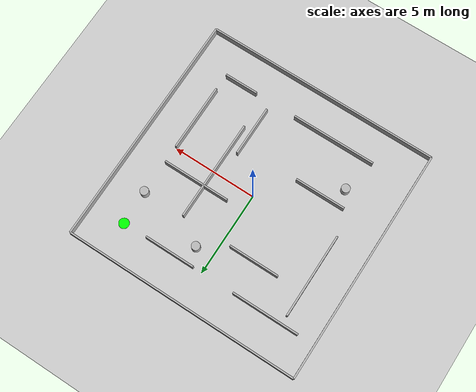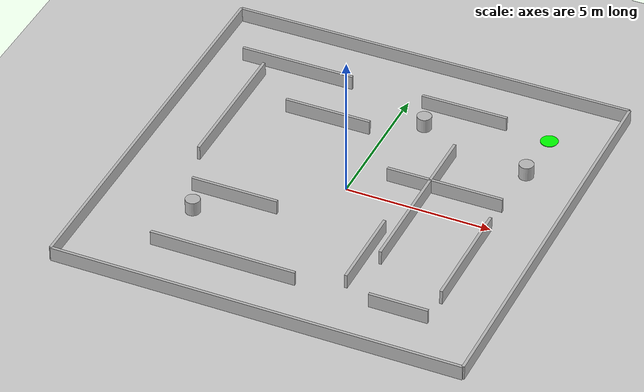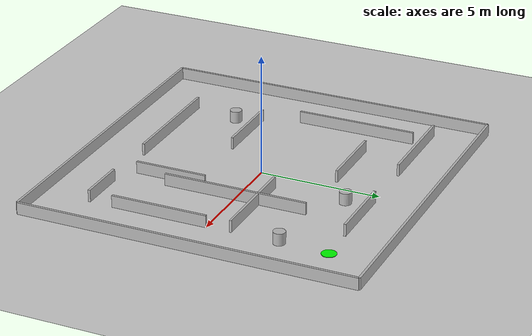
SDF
<?xml version="1.0" ?>
<sdf version="1.6">
  <world name="complex_maze">
    <include><uri>model://ground_plane</uri></include>
    <include><uri>model://sun</uri></include>

    <!-- Outer walls 14x14 -->
    <model name="wn"><static>true</static><pose>0 7 0.25 0 0 0</pose>
      <link name="l"><collision name="c"><geometry><box><size>14 0.1 0.5</size></box></geometry></collision>
      <visual name="v"><geometry><box><size>14 0.1 0.5</size></box></geometry></visual></link></model>
    <model name="ws"><static>true</static><pose>0 -7 0.25 0 0 0</pose>
      <link name="l"><collision name="c"><geometry><box><size>14 0.1 0.5</size></box></geometry></collision>
      <visual name="v"><geometry><box><size>14 0.1 0.5</size></box></geometry></visual></link></model>
    <model name="we"><static>true</static><pose>7 0 0.25 0 0 1.5708</pose>
      <link name="l"><collision name="c"><geometry><box><size>14 0.1 0.5</size></box></geometry></collision>
      <visual name="v"><geometry><box><size>14 0.1 0.5</size></box></geometry></visual></link></model>
    <model name="ww"><static>true</static><pose>-7 0 0.25 0 0 1.5708</pose>
      <link name="l"><collision name="c"><geometry><box><size>14 0.1 0.5</size></box></geometry></collision>
      <visual name="v"><geometry><box><size>14 0.1 0.5</size></box></geometry></visual></link></model>

    <!-- Dense internal maze walls -->
    <model name="m1"><static>true</static><pose>-4 5 0.25 0 0 0</pose>
      <link name="l"><collision name="c"><geometry><box><size>4 0.1 0.5</size></box></geometry></collision>
      <visual name="v"><geometry><box><size>4 0.1 0.5</size></box></geometry></visual></link></model>
    <model name="m2"><static>true</static><pose>2 5 0.25 0 0 0</pose>
      <link name="l"><collision name="c"><geometry><box><size>3 0.1 0.5</size></box></geometry></collision>
      <visual name="v"><geometry><box><size>3 0.1 0.5</size></box></geometry></visual></link></model>
    <model name="m3"><static>true</static><pose>-5 2 0.25 0 0 1.5708</pose>
      <link name="l"><collision name="c"><geometry><box><size>5 0.1 0.5</size></box></geometry></collision>
      <visual name="v"><geometry><box><size>5 0.1 0.5</size></box></geometry></visual></link></model>
    <model name="m4"><static>true</static><pose>-2 3 0.25 0 0 0</pose>
      <link name="l"><collision name="c"><geometry><box><size>3 0.1 0.5</size></box></geometry></collision>
      <visual name="v"><geometry><box><size>3 0.1 0.5</size></box></geometry></visual></link></model>
    <model name="m5"><static>true</static><pose>2.5 0 0.25 0 0 1.5708</pose>
      <link name="l"><collision name="c"><geometry><box><size>6 0.1 0.5</size></box></geometry></collision>
      <visual name="v"><geometry><box><size>6 0.1 0.5</size></box></geometry></visual></link></model>
    <model name="m6"><static>true</static><pose>3 1 0.25 0 0 0</pose>
      <link name="l"><collision name="c"><geometry><box><size>4 0.1 0.5</size></box></geometry></collision>
      <visual name="v"><geometry><box><size>4 0.1 0.5</size></box></geometry></visual></link></model>
    <model name="m7"><static>true</static><pose>5 -2 0.25 0 0 1.5708</pose>
      <link name="l"><collision name="c"><geometry><box><size>4 0.1 0.5</size></box></geometry></collision>
      <visual name="v"><geometry><box><size>4 0.1 0.5</size></box></geometry></visual></link></model>
    <model name="m8"><static>true</static><pose>-3 -2 0.25 0 0 0</pose>
      <link name="l"><collision name="c"><geometry><box><size>3 0.1 0.5</size></box></geometry></collision>
      <visual name="v"><geometry><box><size>3 0.1 0.5</size></box></geometry></visual></link></model>
    <model name="m9"><static>true</static><pose>2 -3 0.25 0 0 1.5708</pose>
      <link name="l"><collision name="c"><geometry><box><size>3 0.1 0.5</size></box></geometry></collision>
      <visual name="v"><geometry><box><size>3 0.1 0.5</size></box></geometry></visual></link></model>
    <model name="m10"><static>true</static><pose>-2 -5 0.25 0 0 0</pose>
      <link name="l"><collision name="c"><geometry><box><size>5 0.1 0.5</size></box></geometry></collision>
      <visual name="v"><geometry><box><size>5 0.1 0.5</size></box></geometry></visual></link></model>
    <model name="m11"><static>true</static><pose>4 -5 0.25 0 0 0</pose>
      <link name="l"><collision name="c"><geometry><box><size>2 0.1 0.5</size></box></geometry></collision>
      <visual name="v"><geometry><box><size>2 0.1 0.5</size></box></geometry></visual></link></model>

    <!-- Scattered pillars -->
    <model name="p1"><static>true</static><pose>-4 -3 0.25 0 0 0</pose>
      <link name="l"><collision name="c"><geometry><cylinder><radius>0.25</radius><length>0.5</length></cylinder></geometry></collision>
      <visual name="v"><geometry><cylinder><radius>0.25</radius><length>0.5</length></cylinder></geometry></visual></link></model>
    <model name="p2"><static>true</static><pose>1 4 0.25 0 0 0</pose>
      <link name="l"><collision name="c"><geometry><cylinder><radius>0.25</radius><length>0.5</length></cylinder></geometry></collision>
      <visual name="v"><geometry><cylinder><radius>0.25</radius><length>0.5</length></cylinder></geometry></visual></link></model>
    <model name="p3"><static>true</static><pose>5 3 0.25 0 0 0</pose>
      <link name="l"><collision name="c"><geometry><cylinder><radius>0.25</radius><length>0.5</length></cylinder></geometry></collision>
      <visual name="v"><geometry><cylinder><radius>0.25</radius><length>0.5</length></cylinder></geometry></visual></link></model>

    <model name="goal"><static>true</static><pose>5 5 0.01 0 0 0</pose>
      <link name="l"><visual name="v"><geometry><cylinder><radius>0.3</radius><length>0.02</length></cylinder></geometry>
      <material><ambient>0 1 0 1</ambient><diffuse>0 1 0 1</diffuse></material></visual></link></model>
  </world>
</sdf>
